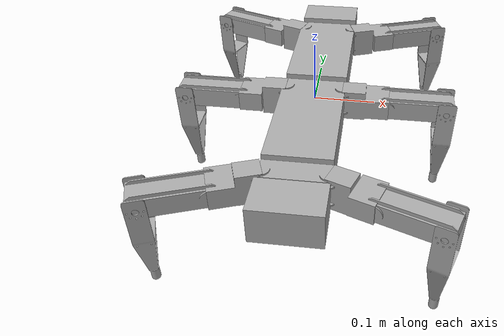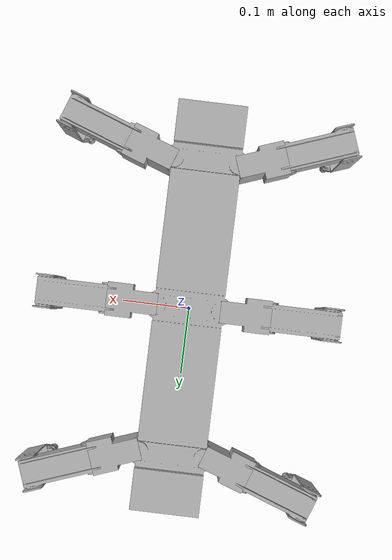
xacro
<?xml version="1.0"?>
<robot name="akrobat" xmlns:xacro="http://www.ros.org/wiki/xacro">
	<xacro:property name="stl_path_visual" value="package://akrobat/stl/visual/"/>
	<xacro:property name="stl_path_collision" value="package://akrobat/stl/collision/"/>
	<xacro:property name="color_grey" value="0.67 0.67 0.67 1"/>

	<gazebo>
		<plugin name="gazebo_ros_control" filename="libgazebo_ros_control.so">
			<robotNamespace>/akrobat</robotNamespace>
		</plugin>
	</gazebo>

	<xacro:macro name="contact_sensor_plugin" params="link_name">
		<gazebo reference="${link_name}">

            <sensor name="${link_name}_contact_sensor" type="contact">
                <update_rate>60.0</update_rate>
                <contact>
                    <collision>${link_name}_collision</collision>
                </contact>

                <plugin name="${link_name}_contact_sensor_plugin" filename="libgazebo_ros_bumper.so">
                    <bumperTopicName>leg_${link_name}_contact_sensor_state</bumperTopicName>
                </plugin>

            </sensor>
        </gazebo>
	</xacro:macro>

	<link name="base_link"/>
	<joint name="base_link_to_akrobat_joint" type="fixed">
		<parent link="base_link"/>
		<child link="akrobat_link"/>
	</joint>
	<link name="akrobat_link">
		<visual>
			<geometry>
				<mesh filename="${stl_path_visual}hexapod_link.stl"/>
			</geometry>
			<origin rpy="0 0 0" xyz="0 0 0"/>
			<material name="grey">
				<color rgba="${color_grey}"/>
			</material>
		</visual>
		<inertial>
			<mass value="0.2"/>
			<inertia ixx="0" ixy="0" ixz="0" iyy="0" iyz="0" izz="0"/>
		</inertial>
		<collision>
			<geometry>
				<mesh filename="${stl_path_collision}hexapod_link.stl"/>
			</geometry>
			<origin rpy="0 0 0" xyz="0 0 0"/>
		</collision>
	</link>

	<xacro:include filename="$(find akrobat)/urdf/left_leg.xacro"/>
	<xacro:include filename="$(find akrobat)/urdf/right_leg.xacro"/>

	<xacro:left_leg leg_number="2" />
	<xacro:left_leg leg_number="4" />
	<xacro:left_leg leg_number="6" />
	<xacro:right_leg leg_number="1" />
	<xacro:right_leg leg_number="3" />
	<xacro:right_leg leg_number="5" />

</robot>

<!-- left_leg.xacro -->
<robot xmlns:xacro="http://ros.org/wiki/xacro">
    <xacro:macro name="left_leg" params="leg_number">
        <link name="${leg_number}_coxa_link">
            <visual>
                <geometry>
                    <mesh filename="${stl_path_visual}coxa_r_link.stl"/>
                </geometry>
                <origin rpy="0 0 0" xyz="0 0 0"/>
                <material name="grey">
                    <color rgba="${color_grey}"/>
                </material>
            </visual>
            <inertial>
                <mass value="0.2"/>
                <inertia ixx="4.99231E-05" ixy="7.69231E-08" ixz="0" iyy="4.83846E-05" iyz="0" izz="4.83846E-05"/>
            </inertial>
            <collision>
                <geometry>
                    <mesh filename="${stl_path_collision}coxa_r_link.stl"/>
                </geometry>
                <origin rpy="0 0 0" xyz="0 0 0"/>
            </collision>
        </link>
        <joint name="m${leg_number}1" type="revolute">
            <parent link="akrobat_link"/>
            <child link="${leg_number}_coxa_link"/>
            <origin xyz="0.051 ${(leg_number-4)/2*-0.217} 0.0" rpy="0 0 ${pi-(leg_number-4)/2*pi*0.1111}" />
            <axis xyz="0 0 1"/>
            <limit effort="1000.0" lower="-0.548" upper="0.548" velocity="0.5"/> <!-- lower="-0.548" upper="0.548" -->
        </joint>
        <link name="${leg_number}_femur_link">
            <visual>
                <geometry>
                    <mesh filename="${stl_path_visual}femur_link.stl"/>
                </geometry>
                <origin rpy="0 0 0" xyz="0 0 0"/>
                <material name="grey">
                    <color rgba="${color_grey}"/>
                </material>
            </visual>
            <inertial>
                <mass value="0.2"/>
                <inertia ixx="2.40946E-05" ixy="-1.00676E-06" ixz="-7.43243E-07" iyy="0.000142824" iyz="-6.75676E-09" izz="0.000150466"/>
            </inertial>
            <collision>
                <geometry>
                    <mesh filename="${stl_path_collision}femur_link.stl"/>
                </geometry>
                <origin rpy="0 0 0" xyz="0 0 0"/>
            </collision>
        </link>
        <joint name="m${leg_number}2" type="revolute">
            <parent link="${leg_number}_coxa_link"/>
            <child link="${leg_number}_femur_link"/>
            <origin xyz="-0.07 0.0 0.0" rpy="0 3.14 0"/>
            <axis xyz="0 1 0"/>
            <limit effort="1000.0" lower="-1.57" upper="1.57" velocity="0.5"/> <!-- lower="-1.57" upper="1.57" -->
        </joint>
        <link name="${leg_number}_tibia_link">
            <visual>
                <geometry>
                    <mesh filename="${stl_path_visual}tibia_link.stl"/>
                </geometry>
                <origin rpy="0 0 0" xyz="0 0 0"/>
                <material name="grey">
                    <color rgba="${color_grey}"/>
                </material>
            </visual>
            <inertial>
                <mass value="0.2"/>
                <inertia ixx="0.000296304" ixy="-4.34783E-08" ixz="3.26087E-06" iyy="0.000265391" iyz="1.73913E-06" izz="4.22174E-05"/>
            </inertial>
            <collision>
                <geometry>
                    <mesh filename="${stl_path_collision}tibia_link.stl"/>
                </geometry>
                <origin rpy="0 0 0" xyz="0 0 0"/>
            </collision>
        </link>

        <xacro:contact_sensor_plugin link_name="${leg_number}_tibia_link"/>

        <joint name="m${leg_number}3" type="revolute">
            <parent link="${leg_number}_femur_link"/>
            <child link="${leg_number}_tibia_link"/>
            <origin xyz="0.096 0.0 0.0" rpy="0 -1.57 0"/>
            <axis xyz="0 1 0"/>
            <limit effort="1000.0" lower="-1.57" upper="1.57" velocity="0.5"/> <!-- lower="-1.57" upper="1.57" -->
        </joint>
        <link name="${leg_number}_foot_link" />
        <joint name="${leg_number}_foot_joint" type="fixed">
            <parent link="${leg_number}_tibia_link" />
            <child link="${leg_number}_foot_link" />
                <origin xyz="0 0.0 -0.162" rpy="0.0 0.0 0.0" />
                <axis xyz="0 1 0"/>
        </joint>

        <transmission name="m${leg_number}1_trans">
            <type>transmission_interface/SimpleTransmission</type>
            <joint name="m${leg_number}1">
                <hardwareInterface>hardware_interface/EffortJointInterface</hardwareInterface>
            </joint>
            <actuator name="m${leg_number}1_motor">
                <hardwareInterface>hardware_interface/EffortJointInterface</hardwareInterface>
                <mechanicalReduction>1</mechanicalReduction>
            </actuator>
        </transmission>

        <transmission name="m${leg_number}2_trans">
            <type>transmission_interface/SimpleTransmission</type>
            <joint name="m${leg_number}2">
                <hardwareInterface>hardware_interface/EffortJointInterface</hardwareInterface>
            </joint>
            <actuator name="m${leg_number}2_motor">
                <hardwareInterface>hardware_interface/EffortJointInterface</hardwareInterface>
                <mechanicalReduction>1</mechanicalReduction>
            </actuator>
        </transmission>

        <transmission name="m${leg_number}3_trans">
            <type>transmission_interface/SimpleTransmission</type>
            <joint name="m${leg_number}3">
                <hardwareInterface>hardware_interface/EffortJointInterface</hardwareInterface>
            </joint>
            <actuator name="m${leg_number}3_motor">
                <hardwareInterface>hardware_interface/EffortJointInterface</hardwareInterface>
                <mechanicalReduction>1</mechanicalReduction>
            </actuator>
        </transmission>
    </xacro:macro>
</robot>

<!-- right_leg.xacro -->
<robot xmlns:xacro="http://ros.org/wiki/xacro">

	<xacro:macro name="right_leg" params="leg_number">
		<link name="${leg_number}_coxa_link">
			<visual>
				<geometry>
					<mesh filename="${stl_path_visual}coxa_l_link.stl"/>
				</geometry>
				<origin rpy="0 0 0" xyz="0 0 0"/>
				<material name="grey">
					<color rgba="${color_grey}"/>
				</material>
			</visual>
				<inertial>
					<mass value="0.2"/>
					<inertia ixx="4.99231E-05" ixy="7.69231E-08" ixz="0" iyy="4.83846E-05" iyz="0" izz="4.83846E-05"/>
				</inertial>
			<collision>
				<geometry>
					<mesh filename="${stl_path_collision}coxa_l_link.stl"/>
				</geometry>
				<origin rpy="0 0 0" xyz="0 0 0"/>
			</collision>
		</link>
		<joint name="m${leg_number}1" type="revolute">
			<parent link="akrobat_link"/>
			<child link="${leg_number}_coxa_link"/>
			<origin xyz="-0.051 ${(leg_number-3)/2*-0.217} 0.0" rpy="0 0 ${pi-(leg_number-3)/2*pi*-0.1111}"/>
			<axis xyz="0 0 1"/>
			<limit effort="1000.0" lower="-0.548" upper="0.548" velocity="0.5"/> <!--lower="-0.548" upper="0.548" -->
		</joint>
		<link name="${leg_number}_femur_link">
			<visual>
				<geometry>
					<mesh filename="${stl_path_visual}femur_link.stl"/>
				</geometry>
				<origin rpy="0 0 0" xyz="0 0 0"/>
				<material name="grey">
					<color rgba="${color_grey}"/>
				</material>
			</visual>
			<inertial>
				<mass value="0.2"/>
				<inertia ixx="2.40946E-05" ixy="-1.00676E-06" ixz="-7.43243E-07" iyy="0.000142824" iyz="-6.75676E-09" izz="0.000150466"/>
			</inertial>
			<collision>
				<geometry>
					<mesh filename="${stl_path_collision}femur_link.stl"/>
				</geometry>
				<origin rpy="0 0 0" xyz="0 0 0"/>
			</collision>
		</link>
		<joint name="m${leg_number}2" type="revolute">
			<parent link="${leg_number}_coxa_link"/>
			<child link="${leg_number}_femur_link"/>
			<origin xyz="0.07 0.0 0.0" rpy="3.14 0 0"/>
			<axis xyz="0 1 0"/>
			<limit effort="1000.0" lower="-1.57" upper="1.57" velocity="0.5"/> <!-- lower="-1.57" upper="1.57" -->
		</joint>
		<link name="${leg_number}_tibia_link">
			<visual>
				<geometry>
					<mesh filename="${stl_path_visual}tibia_link.stl"/>
				</geometry>
				<origin rpy="0 0 0" xyz="0 0 0"/>
				<material name="grey">
					<color rgba="${color_grey}"/>
				</material>
			</visual>
			<inertial>
				<mass value="0.2"/>
				<inertia ixx="0.000296304" ixy="-4.34783E-08" ixz="3.26087E-06" iyy="0.000265391" iyz="1.73913E-06" izz="4.22174E-05"/>
			</inertial>
			<collision>
				<geometry>
					<mesh filename="${stl_path_collision}tibia_link.stl"/>
				</geometry>
				<origin rpy="0 0 0" xyz="0 0 0"/>
			</collision>
		</link>

        <xacro:contact_sensor_plugin link_name="${leg_number}_tibia_link"/>

		<joint name="m${leg_number}3" type="revolute">
			<parent link="${leg_number}_femur_link"/>
			<child link="${leg_number}_tibia_link"/>
			<origin xyz="0.096 0.0 0.0" rpy="0 -1.57 0"/>
			<axis xyz="0 1 0"/>
			<limit effort="1000.0" lower="-1.57" upper="1.57" velocity="0.5"/> <!-- lower="-1.57" upper="1.57" -->
		</joint>
		<link name="${leg_number}_foot_link" />
		<joint name="${leg_number}_foot_joint" type="fixed">
				<parent link="${leg_number}_tibia_link" />
				<child link="${leg_number}_foot_link" />
				<origin xyz="0 0.0 -0.162" rpy="0.0 0.0 0.0" />
				<axis xyz="0 1 0"/>
		</joint>

		<transmission name="m${leg_number}1_trans">
			<type>transmission_interface/SimpleTransmission</type>
			<joint name="m${leg_number}1">
				<hardwareInterface>hardware_interface/EffortJointInterface</hardwareInterface>
			</joint>
			<actuator name="m${leg_number}1_motor">
				<hardwareInterface>hardware_interface/EffortJointInterface</hardwareInterface>
				<mechanicalReduction>1</mechanicalReduction>
			</actuator>
		</transmission>

		<transmission name="m${leg_number}2_trans">
			<type>transmission_interface/SimpleTransmission</type>
			<joint name="m${leg_number}2">
				<hardwareInterface>hardware_interface/EffortJointInterface</hardwareInterface>
			</joint>
			<actuator name="m${leg_number}2_motor">
				<hardwareInterface>hardware_interface/EffortJointInterface</hardwareInterface>
				<mechanicalReduction>1</mechanicalReduction>
			</actuator>
		</transmission>

		<transmission name="m${leg_number}3_trans">
			<type>transmission_interface/SimpleTransmission</type>
			<joint name="m${leg_number}3">
				<hardwareInterface>hardware_interface/EffortJointInterface</hardwareInterface>
			</joint>
			<actuator name="m${leg_number}3_motor">
				<hardwareInterface>hardware_interface/EffortJointInterface</hardwareInterface>
				<mechanicalReduction>1</mechanicalReduction>
			</actuator>
		</transmission>
	</xacro:macro>

</robot>
